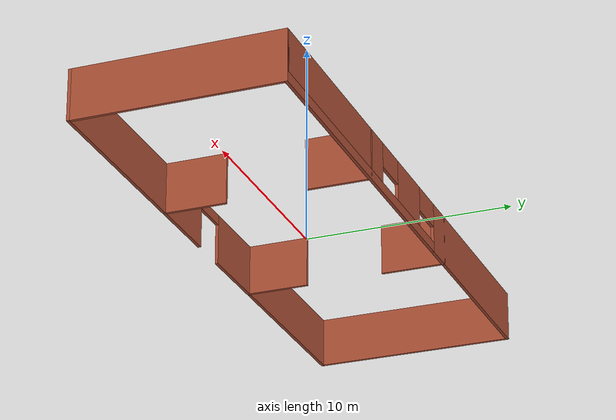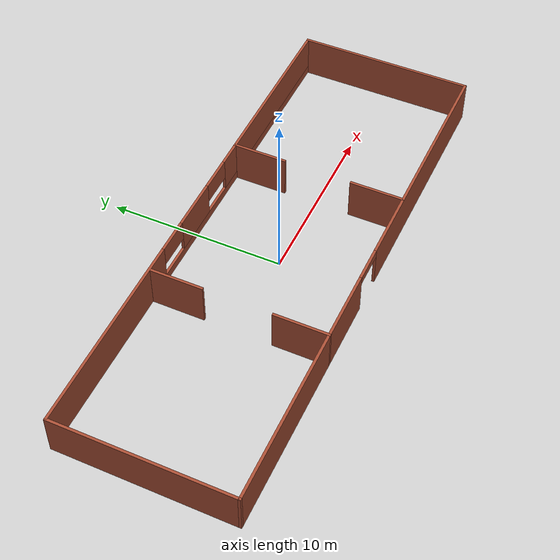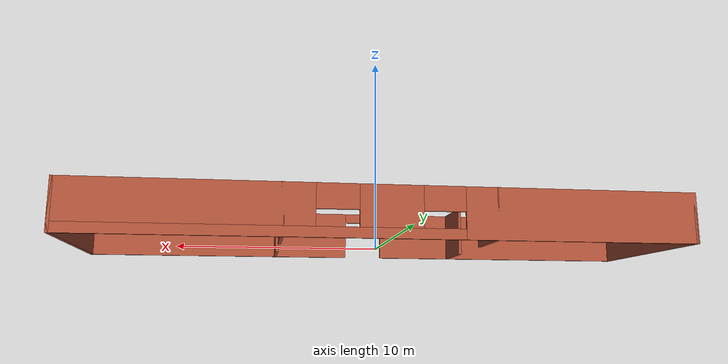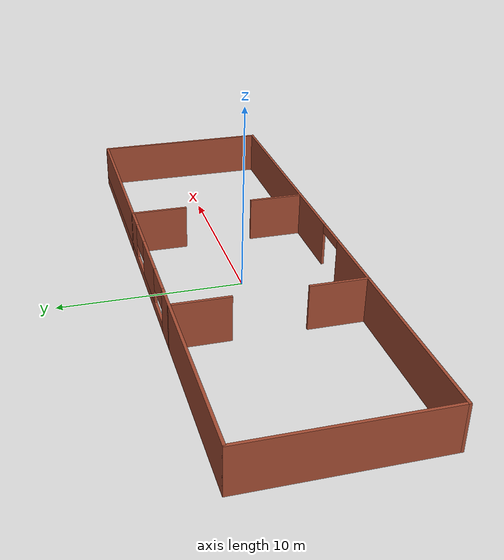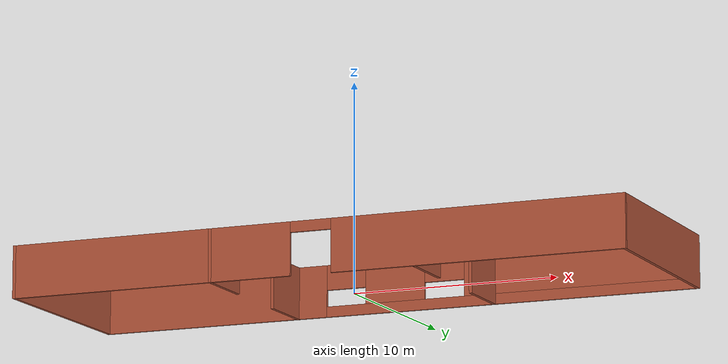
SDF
<?xml version='1.0'?>
<sdf version='1.6'>
  <model name='model'>
    <pose frame=''>0 0 0 0 -0 0</pose>
    <link name='Wall_0'>
      <collision name='Wall_0_Collision'>
        <geometry>
          <box>
            <size>10.15 0.15 2.5</size>
          </box>
        </geometry>
        <pose frame=''>0 0 1.25 0 -0 0</pose>
      </collision>
      <visual name='Wall_0_Visual'>
        <pose frame=''>0 0 1.25 0 -0 0</pose>
        <geometry>
          <box>
            <size>10.15 0.15 2.5</size>
          </box>
        </geometry>
        <material>
          <script>
            <uri>file://media/materials/scripts/gazebo.material</uri>
            <name>Gazebo/Bricks</name>
          </script>
          <ambient>0.760784 0.662745 0.627451 1</ambient>
        </material>
        <meta>
          <layer>0</layer>
        </meta>
      </visual>
      <pose frame=''>-15 0 0 0 -0 1.5708</pose>
    </link>
    <link name='Wall_1'>
      <pose frame=''>0 5 0 0 -0 0</pose>
      <visual name='Wall_1_Visual_0'>
        <pose frame=''>-9.2875 0 1.25 0 -0 0</pose>
        <geometry>
          <box>
            <size>11.575 0.15 2.5</size>
          </box>
        </geometry>
        <material>
          <script>
            <uri>file://media/materials/scripts/gazebo.material</uri>
            <name>Gazebo/Bricks</name>
          </script>
          <ambient>0.760784 0.662745 0.627451 1</ambient>
        </material>
        <meta>
          <layer>0</layer>
        </meta>
      </visual>
      <collision name='Wall_1_Collision_0'>
        <geometry>
          <box>
            <size>11.575 0.15 2.5</size>
          </box>
        </geometry>
        <pose frame=''>-9.2875 0 1.25 0 -0 0</pose>
      </collision>
      <visual name='Wall_1_Visual_1'>
        <pose frame=''>5.7875 0 0.25 0 -0 0</pose>
        <geometry>
          <box>
            <size>18.575 0.15 0.5</size>
          </box>
        </geometry>
        <material>
          <script>
            <uri>file://media/materials/scripts/gazebo.material</uri>
            <name>Gazebo/Bricks</name>
          </script>
          <ambient>0.760784 0.662745 0.627451 1</ambient>
        </material>
        <meta>
          <layer>0</layer>
        </meta>
      </visual>
      <collision name='Wall_1_Collision_1'>
        <geometry>
          <box>
            <size>18.575 0.15 0.5</size>
          </box>
        </geometry>
        <pose frame=''>5.7875 0 0.25 0 -0 0</pose>
      </collision>
      <visual name='Wall_1_Visual_2'>
        <pose frame=''>0 0 1.5 0 -0 0</pose>
        <geometry>
          <box>
            <size>3 0.15 2</size>
          </box>
        </geometry>
        <material>
          <script>
            <uri>file://media/materials/scripts/gazebo.material</uri>
            <name>Gazebo/Bricks</name>
          </script>
          <ambient>0.760784 0.662745 0.627451 1</ambient>
        </material>
        <meta>
          <layer>0</layer>
        </meta>
      </visual>
      <collision name='Wall_1_Collision_2'>
        <geometry>
          <box>
            <size>3 0.15 2</size>
          </box>
        </geometry>
        <pose frame=''>0 0 1.5 0 -0 0</pose>
      </collision>
      <visual name='Wall_1_Visual_3'>
        <pose frame=''>9.2875 0 1.5 0 -0 0</pose>
        <geometry>
          <box>
            <size>11.575 0.15 2</size>
          </box>
        </geometry>
        <material>
          <script>
            <uri>file://media/materials/scripts/gazebo.material</uri>
            <name>Gazebo/Bricks</name>
          </script>
          <ambient>0.760784 0.662745 0.627451 1</ambient>
        </material>
        <meta>
          <layer>0</layer>
        </meta>
      </visual>
      <collision name='Wall_1_Collision_3'>
        <geometry>
          <box>
            <size>11.575 0.15 2</size>
          </box>
        </geometry>
        <pose frame=''>9.2875 0 1.5 0 -0 0</pose>
      </collision>
      <visual name='Wall_1_Visual_4'>
        <pose frame=''>-2.5 0 1.9 0 -0 0</pose>
        <geometry>
          <box>
            <size>2 0.15 1.2</size>
          </box>
        </geometry>
        <material>
          <script>
            <uri>file://media/materials/scripts/gazebo.material</uri>
            <name>Gazebo/Bricks</name>
          </script>
          <ambient>0.760784 0.662745 0.627451 1</ambient>
        </material>
        <meta>
          <layer>0</layer>
        </meta>
      </visual>
      <collision name='Wall_1_Collision_4'>
        <geometry>
          <box>
            <size>2 0.15 1.2</size>
          </box>
        </geometry>
        <pose frame=''>-2.5 0 1.9 0 -0 0</pose>
      </collision>
      <visual name='Wall_1_Visual_5'>
        <pose frame=''>2.5 0 1.9 0 -0 0</pose>
        <geometry>
          <box>
            <size>2 0.15 1.2</size>
          </box>
        </geometry>
        <material>
          <script>
            <uri>file://media/materials/scripts/gazebo.material</uri>
            <name>Gazebo/Bricks</name>
          </script>
          <ambient>0.760784 0.662745 0.627451 1</ambient>
        </material>
        <meta>
          <layer>0</layer>
        </meta>
      </visual>
      <collision name='Wall_1_Collision_5'>
        <geometry>
          <box>
            <size>2 0.15 1.2</size>
          </box>
        </geometry>
        <pose frame=''>2.5 0 1.9 0 -0 0</pose>
      </collision>
    </link>
    <link name='Wall_10'>
      <collision name='Wall_10_Collision'>
        <geometry>
          <box>
            <size>3.15 0.15 2.5</size>
          </box>
        </geometry>
        <pose frame=''>0 0 1.25 0 -0 0</pose>
      </collision>
      <visual name='Wall_10_Visual'>
        <pose frame=''>0 0 1.25 0 -0 0</pose>
        <geometry>
          <box>
            <size>3.15 0.15 2.5</size>
          </box>
        </geometry>
        <material>
          <script>
            <uri>file://media/materials/scripts/gazebo.material</uri>
            <name>Gazebo/Bricks</name>
          </script>
          <ambient>0.760784 0.662745 0.627451 1</ambient>
        </material>
        <meta>
          <layer>0</layer>
        </meta>
      </visual>
      <pose frame=''>5 3.5 0 0 0 -1.5708</pose>
    </link>
    <link name='Wall_12'>
      <collision name='Wall_12_Collision'>
        <geometry>
          <box>
            <size>3.15 0.15 2.5</size>
          </box>
        </geometry>
        <pose frame=''>0 0 1.25 0 -0 0</pose>
      </collision>
      <visual name='Wall_12_Visual'>
        <pose frame=''>0 0 1.25 0 -0 0</pose>
        <geometry>
          <box>
            <size>3.15 0.15 2.5</size>
          </box>
        </geometry>
        <material>
          <script>
            <uri>file://media/materials/scripts/gazebo.material</uri>
            <name>Gazebo/Bricks</name>
          </script>
          <ambient>0.760784 0.662745 0.627451 1</ambient>
        </material>
        <meta>
          <layer>0</layer>
        </meta>
      </visual>
      <pose frame=''>5 -3.5 0 0 -0 1.5708</pose>
    </link>
    <link name='Wall_2'>
      <collision name='Wall_2_Collision'>
        <geometry>
          <box>
            <size>10.15 0.15 2.5</size>
          </box>
        </geometry>
        <pose frame=''>0 0 1.25 0 -0 0</pose>
      </collision>
      <visual name='Wall_2_Visual'>
        <pose frame=''>0 0 1.25 0 -0 0</pose>
        <geometry>
          <box>
            <size>10.15 0.15 2.5</size>
          </box>
        </geometry>
        <material>
          <script>
            <uri>file://media/materials/scripts/gazebo.material</uri>
            <name>Gazebo/Bricks</name>
          </script>
          <ambient>0.760784 0.662745 0.627451 1</ambient>
        </material>
        <meta>
          <layer>0</layer>
        </meta>
      </visual>
      <pose frame=''>15 0 0 0 0 -1.5708</pose>
    </link>
    <link name='Wall_3'>
      <pose frame=''>0 -5 0 0 -0 3.14159</pose>
      <visual name='Wall_3_Visual_0'>
        <pose frame=''>-8.0375 0 1.25 0 -0 0</pose>
        <geometry>
          <box>
            <size>14.075 0.15 2.5</size>
          </box>
        </geometry>
        <material>
          <script>
            <uri>file://media/materials/scripts/gazebo.material</uri>
            <name>Gazebo/Bricks</name>
          </script>
          <ambient>0.760784 0.662745 0.627451 1</ambient>
        </material>
        <meta>
          <layer>0</layer>
        </meta>
      </visual>
      <collision name='Wall_3_Collision_0'>
        <geometry>
          <box>
            <size>14.075 0.15 2.5</size>
          </box>
        </geometry>
        <pose frame=''>-8.0375 0 1.25 0 -0 0</pose>
      </collision>
      <visual name='Wall_3_Visual_1'>
        <pose frame=''>8.0375 0 1.25 0 -0 0</pose>
        <geometry>
          <box>
            <size>14.075 0.15 2.5</size>
          </box>
        </geometry>
        <material>
          <script>
            <uri>file://media/materials/scripts/gazebo.material</uri>
            <name>Gazebo/Bricks</name>
          </script>
          <ambient>0.760784 0.662745 0.627451 1</ambient>
        </material>
        <meta>
          <layer>0</layer>
        </meta>
      </visual>
      <collision name='Wall_3_Collision_1'>
        <geometry>
          <box>
            <size>14.075 0.15 2.5</size>
          </box>
        </geometry>
        <pose frame=''>8.0375 0 1.25 0 -0 0</pose>
      </collision>
      <visual name='Wall_3_Visual_2'>
        <pose frame=''>0 0 2.25 0 -0 0</pose>
        <geometry>
          <box>
            <size>2 0.15 0.5</size>
          </box>
        </geometry>
        <material>
          <script>
            <uri>file://media/materials/scripts/gazebo.material</uri>
            <name>Gazebo/Bricks</name>
          </script>
          <ambient>0.760784 0.662745 0.627451 1</ambient>
        </material>
        <meta>
          <layer>0</layer>
        </meta>
      </visual>
      <collision name='Wall_3_Collision_2'>
        <geometry>
          <box>
            <size>2 0.15 0.5</size>
          </box>
        </geometry>
        <pose frame=''>0 0 2.25 0 -0 0</pose>
      </collision>
    </link>
    <link name='Wall_5'>
      <collision name='Wall_5_Collision'>
        <geometry>
          <box>
            <size>3.15 0.15 2.5</size>
          </box>
        </geometry>
        <pose frame=''>0 0 1.25 0 -0 0</pose>
      </collision>
      <visual name='Wall_5_Visual'>
        <pose frame=''>0 0 1.25 0 -0 0</pose>
        <geometry>
          <box>
            <size>3.15 0.15 2.5</size>
          </box>
        </geometry>
        <material>
          <script>
            <uri>file://media/materials/scripts/gazebo.material</uri>
            <name>Gazebo/Bricks</name>
          </script>
          <ambient>0.760784 0.662745 0.627451 1</ambient>
        </material>
        <meta>
          <layer>0</layer>
        </meta>
      </visual>
      <pose frame=''>-5 -3.5 0 0 -0 1.5708</pose>
    </link>
    <link name='Wall_8'>
      <collision name='Wall_8_Collision'>
        <geometry>
          <box>
            <size>3.15 0.15 2.5</size>
          </box>
        </geometry>
        <pose frame=''>0 0 1.25 0 -0 0</pose>
      </collision>
      <visual name='Wall_8_Visual'>
        <pose frame=''>0 0 1.25 0 -0 0</pose>
        <geometry>
          <box>
            <size>3.15 0.15 2.5</size>
          </box>
        </geometry>
        <material>
          <script>
            <uri>file://media/materials/scripts/gazebo.material</uri>
            <name>Gazebo/Bricks</name>
          </script>
          <ambient>0.760784 0.662745 0.627451 1</ambient>
        </material>
        <meta>
          <layer>0</layer>
        </meta>
      </visual>
      <pose frame=''>-5 3.5 0 0 0 -1.5708</pose>
    </link>
    <static>1</static>
  </model>
</sdf>
